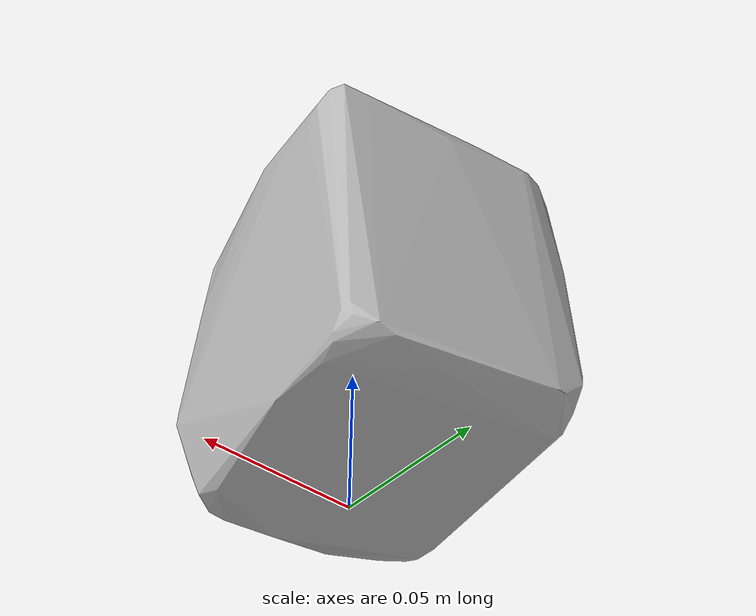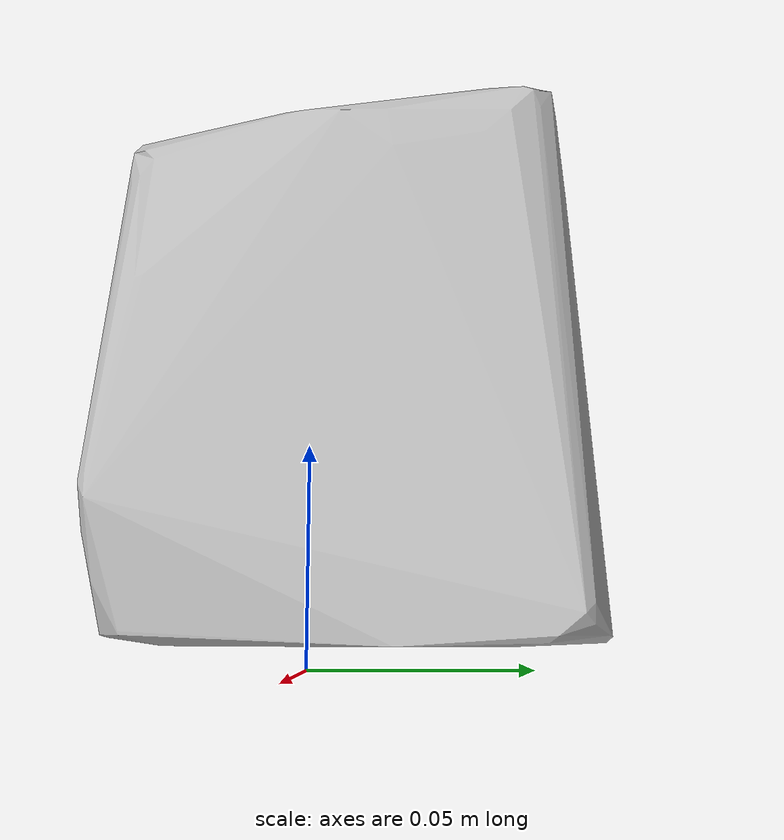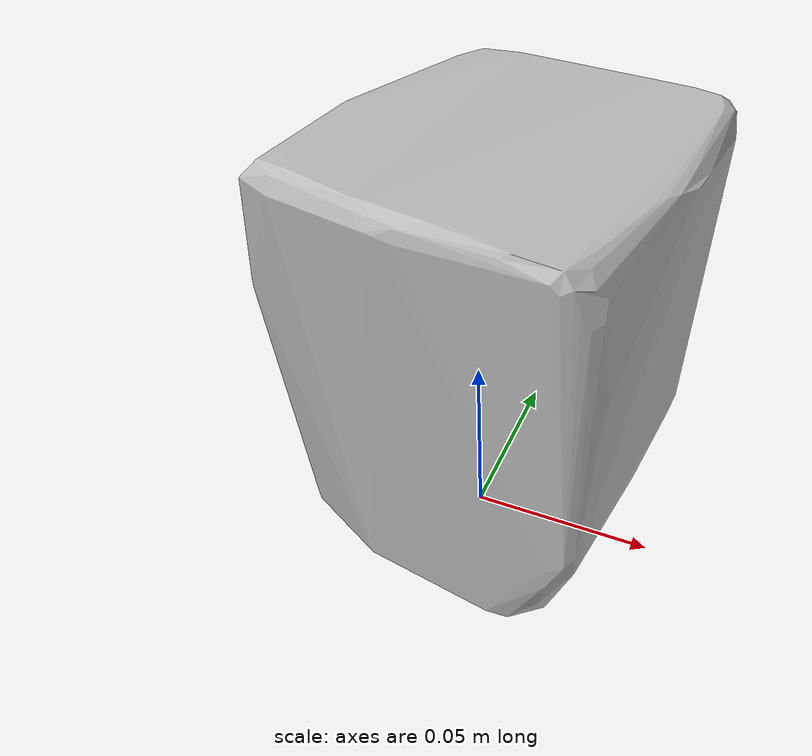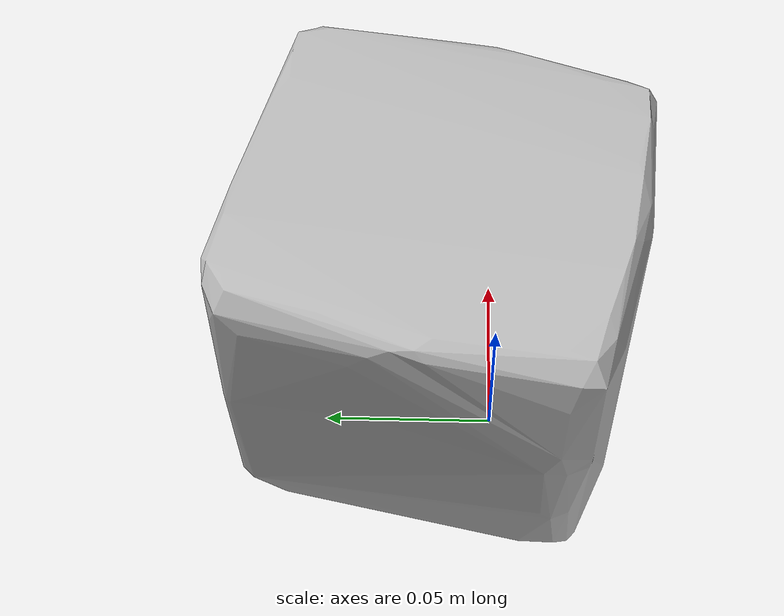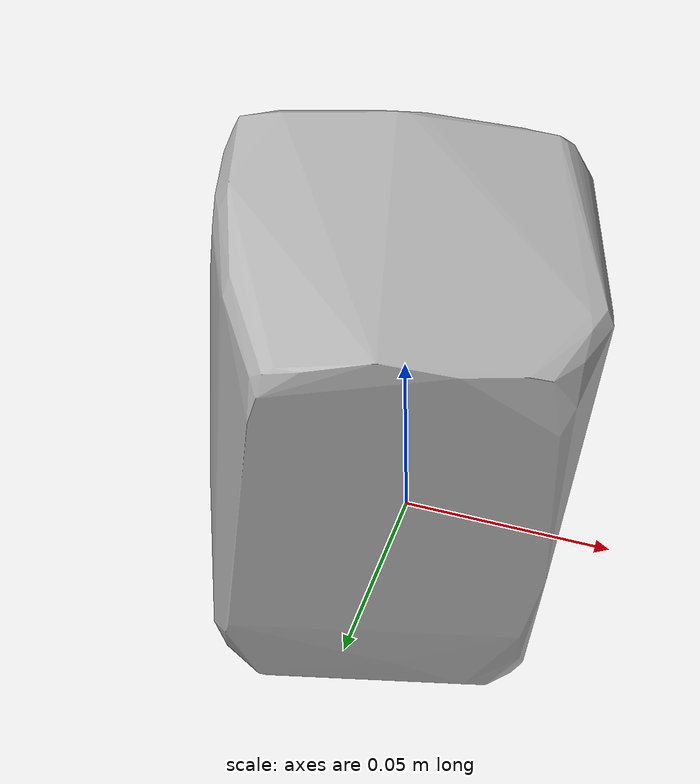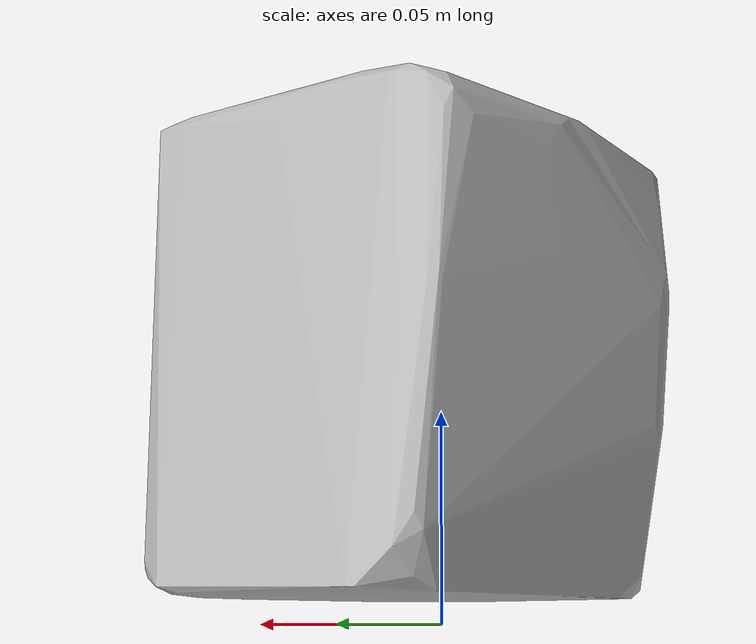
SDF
<?xml version='1.0'?>
<sdf version="1.4">
  <model name="cup_noodles_chicken">
    <static>false</static>
    <link name="link">
      <inertial>
        <pose>0.0015043256657552694 0.01403400302166549 0.05958261987914979 -3.141427298665789 0.021248351110092586 3.0974384768297596</pose>
        <mass>0.08748476946342564</mass>
        <inertia>
          <ixx>0.00014583600132078456</ixx>
          <ixy>-7.209562303086024e-21</ixy>
          <ixz>1.1554936169397322e-21</ixz>
          <iyy>0.000133779605851816</iyy>
          <iyz>-6.970772834891346e-22</iyz>
          <izz>0.0001191236556602635</izz>
        </inertia>
      </inertial>
      <collision name="collision">
        <geometry>
          <mesh>
            <!-- Use a downsampled mesh for collisions -->
            <uri>model:///cup_noodles_chicken/cup_noodles_chicken_250_collision.obj</uri>
	        </mesh>
        </geometry>
        <surface>
      </surface>
      </collision>
      <visual name="visual">
        <geometry>
          <mesh>
            <uri>model:///cup_noodles_chicken/optimized_tsdf_texture_mapped_mesh.obj</uri>
	        </mesh>
        </geometry>
        <material>
          <script>
            <uri>model:///cup_noodles_chicken/cup_noodles_chicken.material</uri>
            <name>cup_noodles_chicken</name>
          </script>
        </material>
      </visual>
    </link>
  </model>
</sdf>
